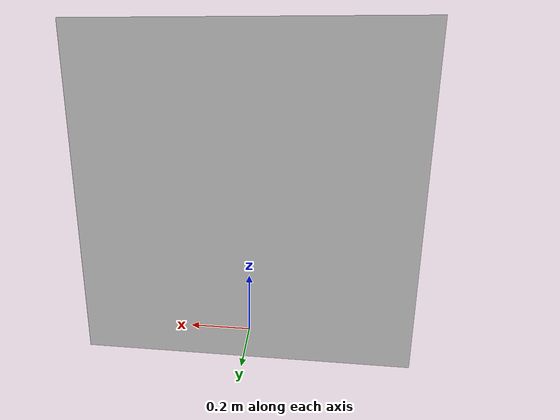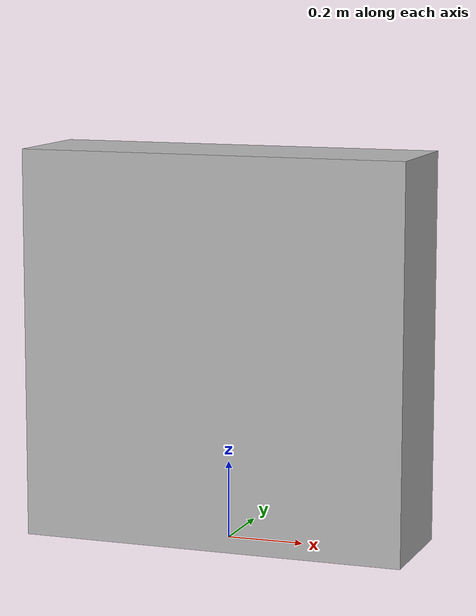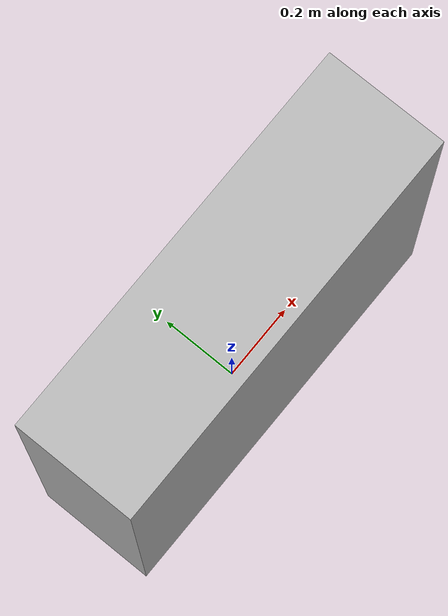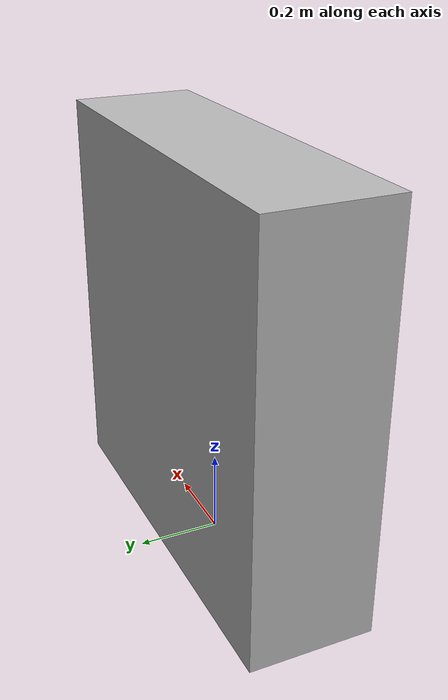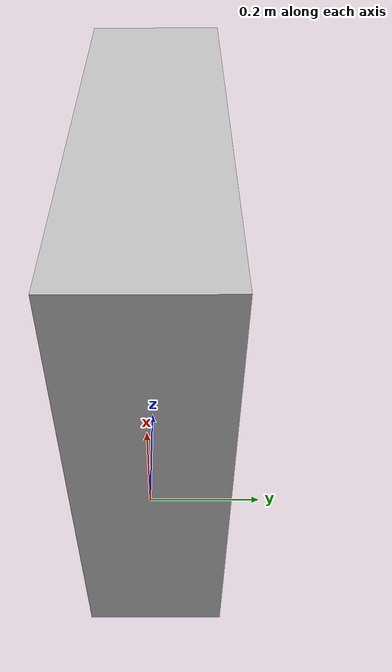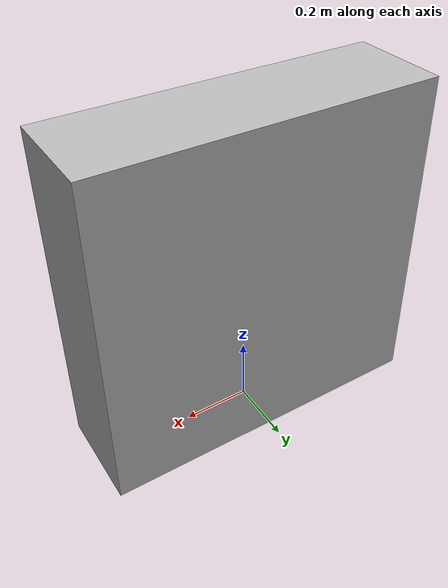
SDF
<?xml version="1.0"?>
<sdf version="1.6">
  <model name="shelf">
    <static>true</static>
    <link name="base">
      <pose>0 0 0.5 0 0 0</pose>
      <collision name="col"><geometry><box><size>1 0.3 1</size></box></geometry></collision>
      <visual name="vis"><geometry><box><size>1 0.3 1</size></box></geometry></visual>
    </link>
    <link name="s1"><pose>0 0 0.25 0 0 0</pose><collision><geometry><box><size>0.9 0.28 0.02</size></box></geometry></collision><visual><geometry><box><size>0.9 0.28 0.02</size></box></geometry></visual></link>
    <link name="s2"><pose>0 0 0.75 0 0 0</pose><collision><geometry><box><size>0.9 0.28 0.02</size></box></geometry></collision><visual><geometry><box><size>0.9 0.28 0.02</size></box></geometry></visual></link>
    <joint name="j1" type="fixed"><parent>base</parent><child>s1</child></joint>
    <joint name="j2" type="fixed"><parent>base</parent><child>s2</child></joint>
  </model>
</sdf>
